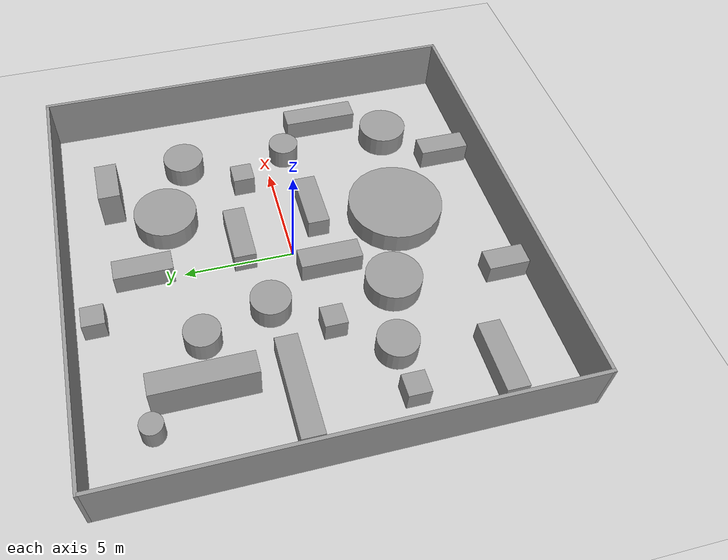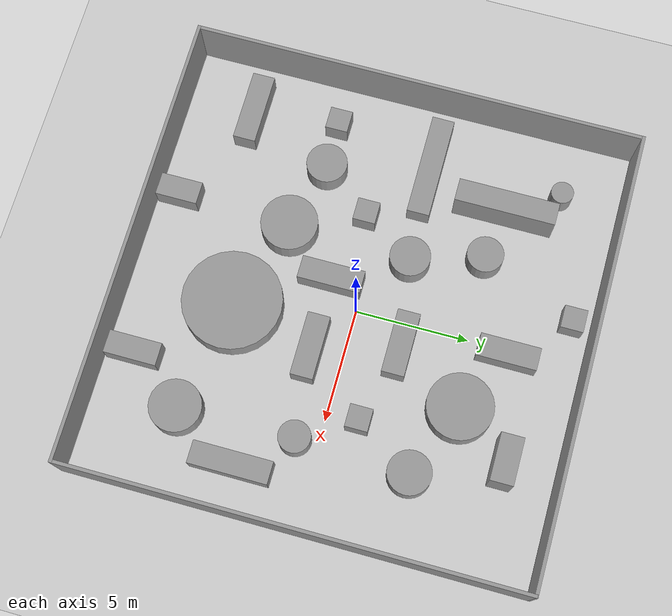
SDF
<sdf version="1.7">
 <world name="default">
  <light name="sun" type="directional">
   <pose>0 0 10 0 -0 0</pose>
   <diffuse>0.8 0.8 0.8 1</diffuse>
   <specular>0.2 0.2 0.2 1</specular>
   <attenuation>
    <range>1000</range>
    <constant>0.9</constant>
    <linear>0.01</linear>
    <quadratic>0.001</quadratic>
   </attenuation>
   <direction>-0.5 0.1 -0.9</direction>
   <spot><inner_angle>0</inner_angle><outer_angle>0</outer_angle><falloff>0</falloff></spot>
  </light>
  <model name="ground_plane">
   <static>1</static>
   <link name="link">
    <collision name="collision">
     <geometry><plane><normal>0 0 1</normal><size>100 100</size></plane></geometry>
     <surface><friction><ode><mu>100</mu><mu2>50</mu2></ode></friction></surface>
    </collision>
    <visual name="visual">
     <cast_shadows>0</cast_shadows>
     <geometry><plane><normal>0 0 1</normal><size>100 100</size></plane></geometry>
     <material>
      <script><uri>file://media/materials/scripts/gazebo.material</uri><name>Gazebo/Grey</name></script>
     </material>
    </visual>
   </link>
  </model>
  <gravity>0 0 -9.8</gravity>
  <magnetic_field>6e-06 2.3e-05 -4.2e-05</magnetic_field>
  <atmosphere type="adiabatic"/>
  <physics type="ode">
   <max_step_size>0.001</max_step_size>
   <real_time_factor>1</real_time_factor>
   <real_time_update_rate>1000</real_time_update_rate>
  </physics>
  <scene><ambient>0.4 0.4 0.4 1</ambient><background>0.7 0.7 0.7 1</background><shadows>1</shadows></scene>
  <spherical_coordinates>
   <surface_model>EARTH_WGS84</surface_model>
   <latitude_deg>0</latitude_deg>
   <longitude_deg>0</longitude_deg>
   <elevation>0</elevation>
   <heading_deg>0</heading_deg>
  </spherical_coordinates>
  <model name="Scenarios_1.1">
   <link name="link_0">
    <inertial>
     <mass>19.1904</mass>
     <inertia><ixx>24.6161</ixx><ixy>0</ixy><ixz>0</ixz><iyy>24.6161</iyy><iyz>0</iyz><izz>46.0337</izz></inertia>
    </inertial>
    <pose>1.71563 -5.34271 0 0 -0 0</pose>
    <visual name="visual">
     <geometry><cylinder><radius>2.19034</radius><length>1</length></cylinder></geometry>
     <material>
      <lighting>1</lighting>
      <script><uri>file://media/materials/scripts/gazebo.material</uri><name>Gazebo/Grey</name></script>
      <shader type="pixel"/>
     </material>
    </visual>
    <collision name="collision">
     <geometry><cylinder><radius>2.19034</radius><length>1</length></cylinder></geometry>
     <surface>
      <friction>
       <ode><mu>1</mu><mu2>1</mu2><fdir1>0 0 0</fdir1><slip1>0</slip1><slip2>0</slip2></ode>
       <torsional>
        <coefficient>1</coefficient>
        <patch_radius>0</patch_radius>
        <surface_radius>0</surface_radius>
        <use_patch_radius>1</use_patch_radius>
        <ode><slip>0</slip></ode>
       </torsional>
      </friction>
      <bounce><restitution_coefficient>0</restitution_coefficient><threshold>1e+06</threshold></bounce>
      <contact>
       <collide_without_contact>0</collide_without_contact>
       <collide_without_contact_bitmask>1</collide_without_contact_bitmask>
       <collide_bitmask>1</collide_bitmask>
       <ode>
        <soft_cfm>0</soft_cfm>
        <soft_erp>0.2</soft_erp>
        <kp>1e+13</kp>
        <kd>1</kd>
        <max_vel>0.01</max_vel>
        <min_depth>0</min_depth>
       </ode>
       <bullet>
        <split_impulse>1</split_impulse>
        <split_impulse_penetration_threshold>-0.01</split_impulse_penetration_threshold>
        <soft_cfm>0</soft_cfm>
        <soft_erp>0.2</soft_erp>
        <kp>1e+13</kp>
        <kd>1</kd>
       </bullet>
      </contact>
     </surface>
    </collision>
   </link>
   <link name="link_1">
    <inertial>
     <mass>5.42729</mass>
     <inertia><ixx>3.6008</ixx><ixy>0</ixy><ixz>0</ixz><iyy>5.06217</iyy><iyz>0</iyz><izz>2.36592</izz></inertia>
    </inertial>
    <pose>5.39319 7.56568 0 0 -0 0</pose>
    <visual name="visual">
     <geometry><box><size>2.05698 1 2.63847</size></box></geometry>
     <material>
      <lighting>1</lighting>
      <script><uri>file://media/materials/scripts/gazebo.material</uri><name>Gazebo/Grey</name></script>
      <shader type="pixel"/>
     </material>
    </visual>
    <collision name="collision">
     <geometry><box><size>2.05698 1 2.63847</size></box></geometry>
     <surface>
      <friction>
       <ode><mu>1</mu><mu2>1</mu2><fdir1>0 0 0</fdir1><slip1>0</slip1><slip2>0</slip2></ode>
       <torsional>
        <coefficient>1</coefficient>
        <patch_radius>0</patch_radius>
        <surface_radius>0</surface_radius>
        <use_patch_radius>1</use_patch_radius>
        <ode><slip>0</slip></ode>
       </torsional>
      </friction>
      <bounce><restitution_coefficient>0</restitution_coefficient><threshold>1e+06</threshold></bounce>
      <contact>
       <collide_without_contact>0</collide_without_contact>
       <collide_without_contact_bitmask>1</collide_without_contact_bitmask>
       <collide_bitmask>1</collide_bitmask>
       <ode>
        <soft_cfm>0</soft_cfm>
        <soft_erp>0.2</soft_erp>
        <kp>1e+13</kp>
        <kd>1</kd>
        <max_vel>0.01</max_vel>
        <min_depth>0</min_depth>
       </ode>
       <bullet>
        <split_impulse>1</split_impulse>
        <split_impulse_penetration_threshold>-0.01</split_impulse_penetration_threshold>
        <soft_cfm>0</soft_cfm>
        <soft_erp>0.2</soft_erp>
        <kp>1e+13</kp>
        <kd>1</kd>
       </bullet>
      </contact>
     </surface>
    </collision>
   </link>
   <link name="link_10">
    <inertial>
     <mass>3.65042</mass>
     <inertia><ixx>1.13705</ixx><ixy>0</ixy><ixz>0</ixz><iyy>1.13705</iyy><iyz>0</iyz><izz>1.6657</izz></inertia>
    </inertial>
    <pose>6.86869 3.86302 0 0 -0 0</pose>
    <visual name="visual">
     <geometry><cylinder><radius>0.955304</radius><length>1</length></cylinder></geometry>
     <material>
      <lighting>1</lighting>
      <script><uri>file://media/materials/scripts/gazebo.material</uri><name>Gazebo/Grey</name></script>
      <shader type="pixel"/>
     </material>
    </visual>
    <collision name="collision">
     <geometry><cylinder><radius>0.955304</radius><length>1</length></cylinder></geometry>
     <surface>
      <friction>
       <ode><mu>1</mu><mu2>1</mu2><fdir1>0 0 0</fdir1><slip1>0</slip1><slip2>0</slip2></ode>
       <torsional>
        <coefficient>1</coefficient>
        <patch_radius>0</patch_radius>
        <surface_radius>0</surface_radius>
        <use_patch_radius>1</use_patch_radius>
        <ode><slip>0</slip></ode>
       </torsional>
      </friction>
      <bounce><restitution_coefficient>0</restitution_coefficient><threshold>1e+06</threshold></bounce>
      <contact>
       <collide_without_contact>0</collide_without_contact>
       <collide_without_contact_bitmask>1</collide_without_contact_bitmask>
       <collide_bitmask>1</collide_bitmask>
       <ode>
        <soft_cfm>0</soft_cfm>
        <soft_erp>0.2</soft_erp>
        <kp>1e+13</kp>
        <kd>1</kd>
        <max_vel>0.01</max_vel>
        <min_depth>0</min_depth>
       </ode>
       <bullet>
        <split_impulse>1</split_impulse>
        <split_impulse_penetration_threshold>-0.01</split_impulse_penetration_threshold>
        <soft_cfm>0</soft_cfm>
        <soft_erp>0.2</soft_erp>
        <kp>1e+13</kp>
        <kd>1</kd>
       </bullet>
      </contact>
     </surface>
    </collision>
   </link>
   <link name="link_11">
    <inertial>
     <mass>2.81928</mass>
     <inertia><ixx>0.46988</ixx><ixy>0</ixy><ixz>0</ixz><iyy>2.10233</iyy><iyz>0</iyz><izz>2.10233</izz></inertia>
    </inertial>
    <pose>2.75847 -1.56518 0 0 -0 0</pose>
    <visual name="visual">
     <geometry><box><size>2.81929 1 1</size></box></geometry>
     <material>
      <lighting>1</lighting>
      <script><uri>file://media/materials/scripts/gazebo.material</uri><name>Gazebo/Grey</name></script>
      <shader type="pixel"/>
     </material>
    </visual>
    <collision name="collision">
     <geometry><box><size>2.81929 1 1</size></box></geometry>
     <surface>
      <friction>
       <ode><mu>1</mu><mu2>1</mu2><fdir1>0 0 0</fdir1><slip1>0</slip1><slip2>0</slip2></ode>
       <torsional>
        <coefficient>1</coefficient>
        <patch_radius>0</patch_radius>
        <surface_radius>0</surface_radius>
        <use_patch_radius>1</use_patch_radius>
        <ode><slip>0</slip></ode>
       </torsional>
      </friction>
      <bounce><restitution_coefficient>0</restitution_coefficient><threshold>1e+06</threshold></bounce>
      <contact>
       <collide_without_contact>0</collide_without_contact>
       <collide_without_contact_bitmask>1</collide_without_contact_bitmask>
       <collide_bitmask>1</collide_bitmask>
       <ode>
        <soft_cfm>0</soft_cfm>
        <soft_erp>0.2</soft_erp>
        <kp>1e+13</kp>
        <kd>1</kd>
        <max_vel>0.01</max_vel>
        <min_depth>0</min_depth>
       </ode>
       <bullet>
        <split_impulse>1</split_impulse>
        <split_impulse_penetration_threshold>-0.01</split_impulse_penetration_threshold>
        <soft_cfm>0</soft_cfm>
        <soft_erp>0.2</soft_erp>
        <kp>1e+13</kp>
        <kd>1</kd>
       </bullet>
      </contact>
     </surface>
    </collision>
   </link>
   <link name="link_12">
    <inertial>
     <mass>1</mass>
     <inertia><ixx>0.145833</ixx><ixy>0</ixy><ixz>0</ixz><iyy>0.145833</iyy><iyz>0</iyz><izz>0.125</izz></inertia>
    </inertial>
    <pose>-6.79938 7.22476 0 0 -0 0</pose>
    <visual name="visual">
     <geometry><cylinder><radius>0.5</radius><length>1</length></cylinder></geometry>
     <material>
      <lighting>1</lighting>
      <script><uri>file://media/materials/scripts/gazebo.material</uri><name>Gazebo/Grey</name></script>
      <shader type="pixel"/>
     </material>
    </visual>
    <collision name="collision">
     <geometry><cylinder><radius>0.5</radius><length>1</length></cylinder></geometry>
     <surface>
      <friction>
       <ode><mu>1</mu><mu2>1</mu2><fdir1>0 0 0</fdir1><slip1>0</slip1><slip2>0</slip2></ode>
       <torsional>
        <coefficient>1</coefficient>
        <patch_radius>0</patch_radius>
        <surface_radius>0</surface_radius>
        <use_patch_radius>1</use_patch_radius>
        <ode><slip>0</slip></ode>
       </torsional>
      </friction>
      <bounce><restitution_coefficient>0</restitution_coefficient><threshold>1e+06</threshold></bounce>
      <contact>
       <collide_without_contact>0</collide_without_contact>
       <collide_without_contact_bitmask>1</collide_without_contact_bitmask>
       <collide_bitmask>1</collide_bitmask>
       <ode>
        <soft_cfm>0</soft_cfm>
        <soft_erp>0.2</soft_erp>
        <kp>1e+13</kp>
        <kd>1</kd>
        <max_vel>0.01</max_vel>
        <min_depth>0</min_depth>
       </ode>
       <bullet>
        <split_impulse>1</split_impulse>
        <split_impulse_penetration_threshold>-0.01</split_impulse_penetration_threshold>
        <soft_cfm>0</soft_cfm>
        <soft_erp>0.2</soft_erp>
        <kp>1e+13</kp>
        <kd>1</kd>
       </bullet>
      </contact>
     </surface>
    </collision>
   </link>
   <link name="link_13">
    <inertial>
     <mass>4.58557</mass>
     <inertia><ixx>0.764262</ixx><ixy>0</ixy><ixz>0</ixz><iyy>8.41736</iyy><iyz>0</iyz><izz>8.41736</izz></inertia>
    </inertial>
    <pose>-6.50098 1.33683 0 0 -0 0</pose>
    <visual name="visual">
     <geometry><box><size>4.58557 1 1</size></box></geometry>
     <material>
      <lighting>1</lighting>
      <script><uri>file://media/materials/scripts/gazebo.material</uri><name>Gazebo/Grey</name></script>
      <shader type="pixel"/>
     </material>
    </visual>
    <collision name="collision">
     <geometry><box><size>4.58557 1 1</size></box></geometry>
     <surface>
      <friction>
       <ode><mu>1</mu><mu2>1</mu2><fdir1>0 0 0</fdir1><slip1>0</slip1><slip2>0</slip2></ode>
       <torsional>
        <coefficient>1</coefficient>
        <patch_radius>0</patch_radius>
        <surface_radius>0</surface_radius>
        <use_patch_radius>1</use_patch_radius>
        <ode><slip>0</slip></ode>
       </torsional>
      </friction>
      <bounce><restitution_coefficient>0</restitution_coefficient><threshold>1e+06</threshold></bounce>
      <contact>
       <collide_without_contact>0</collide_without_contact>
       <collide_without_contact_bitmask>1</collide_without_contact_bitmask>
       <collide_bitmask>1</collide_bitmask>
       <ode>
        <soft_cfm>0</soft_cfm>
        <soft_erp>0.2</soft_erp>
        <kp>1e+13</kp>
        <kd>1</kd>
        <max_vel>0.01</max_vel>
        <min_depth>0</min_depth>
       </ode>
       <bullet>
        <split_impulse>1</split_impulse>
        <split_impulse_penetration_threshold>-0.01</split_impulse_penetration_threshold>
        <soft_cfm>0</soft_cfm>
        <soft_erp>0.2</soft_erp>
        <kp>1e+13</kp>
        <kd>1</kd>
       </bullet>
      </contact>
     </surface>
    </collision>
   </link>
   <link name="link_14">
    <inertial>
     <mass>2.32346</mass>
     <inertia><ixx>1.23889</ixx><ixy>0</ixy><ixz>0</ixz><iyy>0.387244</iyy><iyz>0</iyz><izz>1.23889</izz></inertia>
    </inertial>
    <pose>4.84834 -8.79919 0 0 -0 0</pose>
    <visual name="visual">
     <geometry><box><size>1 2.32347 1</size></box></geometry>
     <material>
      <lighting>1</lighting>
      <script><uri>file://media/materials/scripts/gazebo.material</uri><name>Gazebo/Grey</name></script>
      <shader type="pixel"/>
     </material>
    </visual>
    <collision name="collision">
     <geometry><box><size>1 2.32347 1</size></box></geometry>
     <surface>
      <friction>
       <ode><mu>1</mu><mu2>1</mu2><fdir1>0 0 0</fdir1><slip1>0</slip1><slip2>0</slip2></ode>
       <torsional>
        <coefficient>1</coefficient>
        <patch_radius>0</patch_radius>
        <surface_radius>0</surface_radius>
        <use_patch_radius>1</use_patch_radius>
        <ode><slip>0</slip></ode>
       </torsional>
      </friction>
      <bounce><restitution_coefficient>0</restitution_coefficient><threshold>1e+06</threshold></bounce>
      <contact>
       <collide_without_contact>0</collide_without_contact>
       <collide_without_contact_bitmask>1</collide_without_contact_bitmask>
       <collide_bitmask>1</collide_bitmask>
       <ode>
        <soft_cfm>0</soft_cfm>
        <soft_erp>0.2</soft_erp>
        <kp>1e+13</kp>
        <kd>1</kd>
        <max_vel>0.01</max_vel>
        <min_depth>0</min_depth>
       </ode>
       <bullet>
        <split_impulse>1</split_impulse>
        <split_impulse_penetration_threshold>-0.01</split_impulse_penetration_threshold>
        <soft_cfm>0</soft_cfm>
        <soft_erp>0.2</soft_erp>
        <kp>1e+13</kp>
        <kd>1</kd>
       </bullet>
      </contact>
     </surface>
    </collision>
   </link>
   <link name="link_15">
    <inertial>
     <mass>2.79707</mass>
     <inertia><ixx>2.05669</ixx><ixy>0</ixy><ixz>0</ixz><iyy>0.466179</iyy><iyz>0</iyz><izz>2.05669</izz></inertia>
    </inertial>
    <pose>-0.51354 -1.55911 0 0 -0 0</pose>
    <visual name="visual">
     <geometry><box><size>1 2.79707 1</size></box></geometry>
     <material>
      <lighting>1</lighting>
      <script><uri>file://media/materials/scripts/gazebo.material</uri><name>Gazebo/Grey</name></script>
      <shader type="pixel"/>
     </material>
    </visual>
    <collision name="collision">
     <geometry><box><size>1 2.79707 1</size></box></geometry>
     <surface>
      <friction>
       <ode><mu>1</mu><mu2>1</mu2><fdir1>0 0 0</fdir1><slip1>0</slip1><slip2>0</slip2></ode>
       <torsional>
        <coefficient>1</coefficient>
        <patch_radius>0</patch_radius>
        <surface_radius>0</surface_radius>
        <use_patch_radius>1</use_patch_radius>
        <ode><slip>0</slip></ode>
       </torsional>
      </friction>
      <bounce><restitution_coefficient>0</restitution_coefficient><threshold>1e+06</threshold></bounce>
      <contact>
       <collide_without_contact>0</collide_without_contact>
       <collide_without_contact_bitmask>1</collide_without_contact_bitmask>
       <collide_bitmask>1</collide_bitmask>
       <ode>
        <soft_cfm>0</soft_cfm>
        <soft_erp>0.2</soft_erp>
        <kp>1e+13</kp>
        <kd>1</kd>
        <max_vel>0.01</max_vel>
        <min_depth>0</min_depth>
       </ode>
       <bullet>
        <split_impulse>1</split_impulse>
        <split_impulse_penetration_threshold>-0.01</split_impulse_penetration_threshold>
        <soft_cfm>0</soft_cfm>
        <soft_erp>0.2</soft_erp>
        <kp>1e+13</kp>
        <kd>1</kd>
       </bullet>
      </contact>
     </surface>
    </collision>
   </link>
   <link name="link_16">
    <inertial>
     <mass>3.4805</mass>
     <inertia><ixx>3.80355</ixx><ixy>0</ixy><ixz>0</ixz><iyy>0.580083</iyy><iyz>0</iyz><izz>3.80355</izz></inertia>
    </inertial>
    <pose>8.41021 -3.3978 0 0 -0 0</pose>
    <visual name="visual">
     <geometry><box><size>1 3.48049 1</size></box></geometry>
     <material>
      <lighting>1</lighting>
      <script><uri>file://media/materials/scripts/gazebo.material</uri><name>Gazebo/Grey</name></script>
      <shader type="pixel"/>
     </material>
    </visual>
    <collision name="collision">
     <geometry><box><size>1 3.48049 1</size></box></geometry>
     <surface>
      <friction>
       <ode><mu>1</mu><mu2>1</mu2><fdir1>0 0 0</fdir1><slip1>0</slip1><slip2>0</slip2></ode>
       <torsional>
        <coefficient>1</coefficient>
        <patch_radius>0</patch_radius>
        <surface_radius>0</surface_radius>
        <use_patch_radius>1</use_patch_radius>
        <ode><slip>0</slip></ode>
       </torsional>
      </friction>
      <bounce><restitution_coefficient>0</restitution_coefficient><threshold>1e+06</threshold></bounce>
      <contact>
       <collide_without_contact>0</collide_without_contact>
       <collide_without_contact_bitmask>1</collide_without_contact_bitmask>
       <collide_bitmask>1</collide_bitmask>
       <ode>
        <soft_cfm>0</soft_cfm>
        <soft_erp>0.2</soft_erp>
        <kp>1e+13</kp>
        <kd>1</kd>
        <max_vel>0.01</max_vel>
        <min_depth>0</min_depth>
       </ode>
       <bullet>
        <split_impulse>1</split_impulse>
        <split_impulse_penetration_threshold>-0.01</split_impulse_penetration_threshold>
        <soft_cfm>0</soft_cfm>
        <soft_erp>0.2</soft_erp>
        <kp>1e+13</kp>
        <kd>1</kd>
       </bullet>
      </contact>
     </surface>
    </collision>
   </link>
   <link name="link_17">
    <inertial>
     <mass>1</mass>
     <inertia>
      <ixx>0.166667</ixx>
      <ixy>0</ixy>
      <ixz>0</ixz>
      <iyy>0.166667</iyy>
      <iyz>0</iyz>
      <izz>0.166667</izz>
     </inertia>
    </inertial>
    <pose>5.21333 1.24688 0 0 -0 0</pose>
    <visual name="visual">
     <geometry><box><size>1 1 1</size></box></geometry>
     <material>
      <lighting>1</lighting>
      <script><uri>file://media/materials/scripts/gazebo.material</uri><name>Gazebo/Grey</name></script>
      <shader type="pixel"/>
     </material>
    </visual>
    <collision name="collision">
     <geometry><box><size>1 1 1</size></box></geometry>
     <surface>
      <friction>
       <ode><mu>1</mu><mu2>1</mu2><fdir1>0 0 0</fdir1><slip1>0</slip1><slip2>0</slip2></ode>
       <torsional>
        <coefficient>1</coefficient>
        <patch_radius>0</patch_radius>
        <surface_radius>0</surface_radius>
        <use_patch_radius>1</use_patch_radius>
        <ode><slip>0</slip></ode>
       </torsional>
      </friction>
      <bounce><restitution_coefficient>0</restitution_coefficient><threshold>1e+06</threshold></bounce>
      <contact>
       <collide_without_contact>0</collide_without_contact>
       <collide_without_contact_bitmask>1</collide_without_contact_bitmask>
       <collide_bitmask>1</collide_bitmask>
       <ode>
        <soft_cfm>0</soft_cfm>
        <soft_erp>0.2</soft_erp>
        <kp>1e+13</kp>
        <kd>1</kd>
        <max_vel>0.01</max_vel>
        <min_depth>0</min_depth>
       </ode>
       <bullet>
        <split_impulse>1</split_impulse>
        <split_impulse_penetration_threshold>-0.01</split_impulse_penetration_threshold>
        <soft_cfm>0</soft_cfm>
        <soft_erp>0.2</soft_erp>
        <kp>1e+13</kp>
        <kd>1</kd>
       </bullet>
      </contact>
     </surface>
    </collision>
   </link>
   <link name="link_18">
    <inertial>
     <mass>8.37387</mass>
     <inertia><ixx>5.08041</ixx><ixy>0</ixy><ixz>0</ixz><iyy>5.08041</iyy><iyz>0</iyz><izz>8.76517</izz></inertia>
    </inertial>
    <pose>3.62657 5.21281 0 0 -0 0</pose>
    <visual name="visual">
     <geometry><cylinder><radius>1.44688</radius><length>1</length></cylinder></geometry>
     <material>
      <lighting>1</lighting>
      <script><uri>file://media/materials/scripts/gazebo.material</uri><name>Gazebo/Grey</name></script>
      <shader type="pixel"/>
     </material>
    </visual>
    <collision name="collision">
     <geometry><cylinder><radius>1.44688</radius><length>1</length></cylinder></geometry>
     <surface>
      <friction>
       <ode><mu>1</mu><mu2>1</mu2><fdir1>0 0 0</fdir1><slip1>0</slip1><slip2>0</slip2></ode>
       <torsional>
        <coefficient>1</coefficient>
        <patch_radius>0</patch_radius>
        <surface_radius>0</surface_radius>
        <use_patch_radius>1</use_patch_radius>
        <ode><slip>0</slip></ode>
       </torsional>
      </friction>
      <bounce><restitution_coefficient>0</restitution_coefficient><threshold>1e+06</threshold></bounce>
      <contact>
       <collide_without_contact>0</collide_without_contact>
       <collide_without_contact_bitmask>1</collide_without_contact_bitmask>
       <collide_bitmask>1</collide_bitmask>
       <ode>
        <soft_cfm>0</soft_cfm>
        <soft_erp>0.2</soft_erp>
        <kp>1e+13</kp>
        <kd>1</kd>
        <max_vel>0.01</max_vel>
        <min_depth>0</min_depth>
       </ode>
       <bullet>
        <split_impulse>1</split_impulse>
        <split_impulse_penetration_threshold>-0.01</split_impulse_penetration_threshold>
        <soft_cfm>0</soft_cfm>
        <soft_erp>0.2</soft_erp>
        <kp>1e+13</kp>
        <kd>1</kd>
       </bullet>
      </contact>
     </surface>
    </collision>
   </link>
   <link name="link_19">
    <inertial>
     <mass>1</mass>
     <inertia>
      <ixx>0.166667</ixx>
      <ixy>0</ixy>
      <ixz>0</ixz>
      <iyy>0.166667</iyy>
      <iyz>0</iyz>
      <izz>0.166667</izz>
     </inertia>
    </inertial>
    <pose>-1.33849 8.98036 0 0 -0 0</pose>
    <visual name="visual">
     <geometry><box><size>1 1 1</size></box></geometry>
     <material>
      <lighting>1</lighting>
      <script><uri>file://media/materials/scripts/gazebo.material</uri><name>Gazebo/Grey</name></script>
      <shader type="pixel"/>
     </material>
    </visual>
    <collision name="collision">
     <geometry><box><size>1 1 1</size></box></geometry>
     <surface>
      <friction>
       <ode><mu>1</mu><mu2>1</mu2><fdir1>0 0 0</fdir1><slip1>0</slip1><slip2>0</slip2></ode>
       <torsional>
        <coefficient>1</coefficient>
        <patch_radius>0</patch_radius>
        <surface_radius>0</surface_radius>
        <use_patch_radius>1</use_patch_radius>
        <ode><slip>0</slip></ode>
       </torsional>
      </friction>
      <bounce><restitution_coefficient>0</restitution_coefficient><threshold>1e+06</threshold></bounce>
      <contact>
       <collide_without_contact>0</collide_without_contact>
       <collide_without_contact_bitmask>1</collide_without_contact_bitmask>
       <collide_bitmask>1</collide_bitmask>
       <ode>
        <soft_cfm>0</soft_cfm>
        <soft_erp>0.2</soft_erp>
        <kp>1e+13</kp>
        <kd>1</kd>
        <max_vel>0.01</max_vel>
        <min_depth>0</min_depth>
       </ode>
       <bullet>
        <split_impulse>1</split_impulse>
        <split_impulse_penetration_threshold>-0.01</split_impulse_penetration_threshold>
        <soft_cfm>0</soft_cfm>
        <soft_erp>0.2</soft_erp>
        <kp>1e+13</kp>
        <kd>1</kd>
       </bullet>
      </contact>
     </surface>
    </collision>
   </link>
   <link name="link_2">
    <inertial>
     <mass>2.61849</mass>
     <inertia>
      <ixx>0.646731</ixx>
      <ixy>0</ixy>
      <ixz>0</ixz>
      <iyy>0.646731</iyy>
      <iyz>0</iyz>
      <izz>0.857048</izz>
     </inertia>
    </inertial>
    <pose>-3.144 4.64276 0 0 -0 0</pose>
    <visual name="visual">
     <geometry><cylinder><radius>0.809082</radius><length>1</length></cylinder></geometry>
     <material>
      <lighting>1</lighting>
      <script><uri>file://media/materials/scripts/gazebo.material</uri><name>Gazebo/Grey</name></script>
      <shader type="pixel"/>
     </material>
    </visual>
    <collision name="collision">
     <geometry><cylinder><radius>0.809082</radius><length>1</length></cylinder></geometry>
     <surface>
      <friction>
       <ode><mu>1</mu><mu2>1</mu2><fdir1>0 0 0</fdir1><slip1>0</slip1><slip2>0</slip2></ode>
       <torsional>
        <coefficient>1</coefficient>
        <patch_radius>0</patch_radius>
        <surface_radius>0</surface_radius>
        <use_patch_radius>1</use_patch_radius>
        <ode><slip>0</slip></ode>
       </torsional>
      </friction>
      <bounce><restitution_coefficient>0</restitution_coefficient><threshold>1e+06</threshold></bounce>
      <contact>
       <collide_without_contact>0</collide_without_contact>
       <collide_without_contact_bitmask>1</collide_without_contact_bitmask>
       <collide_bitmask>1</collide_bitmask>
       <ode>
        <soft_cfm>0</soft_cfm>
        <soft_erp>0.2</soft_erp>
        <kp>1e+13</kp>
        <kd>1</kd>
        <max_vel>0.01</max_vel>
        <min_depth>0</min_depth>
       </ode>
       <bullet>
        <split_impulse>1</split_impulse>
        <split_impulse_penetration_threshold>-0.01</split_impulse_penetration_threshold>
        <soft_cfm>0</soft_cfm>
        <soft_erp>0.2</soft_erp>
        <kp>1e+13</kp>
        <kd>1</kd>
       </bullet>
      </contact>
     </surface>
    </collision>
   </link>
   <link name="link_20">
    <inertial>
     <mass>10.4769</mass>
     <inertia><ixx>22.1712</ixx><ixy>0</ixy><ixz>0</ixz><iyy>5.69606</iyy><iyz>0</iyz><izz>18.2213</izz></inertia>
    </inertial>
    <pose>-5.48547 4.96664 0 0 -0 0</pose>
    <visual name="visual">
     <geometry><box><size>1 4.4576 2.35035</size></box></geometry>
     <material>
      <lighting>1</lighting>
      <script><uri>file://media/materials/scripts/gazebo.material</uri><name>Gazebo/Grey</name></script>
      <shader type="pixel"/>
     </material>
    </visual>
    <collision name="collision">
     <geometry><box><size>1 4.4576 2.35035</size></box></geometry>
     <surface>
      <friction>
       <ode><mu>1</mu><mu2>1</mu2><fdir1>0 0 0</fdir1><slip1>0</slip1><slip2>0</slip2></ode>
       <torsional>
        <coefficient>1</coefficient>
        <patch_radius>0</patch_radius>
        <surface_radius>0</surface_radius>
        <use_patch_radius>1</use_patch_radius>
        <ode><slip>0</slip></ode>
       </torsional>
      </friction>
      <bounce><restitution_coefficient>0</restitution_coefficient><threshold>1e+06</threshold></bounce>
      <contact>
       <collide_without_contact>0</collide_without_contact>
       <collide_without_contact_bitmask>1</collide_without_contact_bitmask>
       <collide_bitmask>1</collide_bitmask>
       <ode>
        <soft_cfm>0</soft_cfm>
        <soft_erp>0.2</soft_erp>
        <kp>1e+13</kp>
        <kd>1</kd>
        <max_vel>0.01</max_vel>
        <min_depth>0</min_depth>
       </ode>
       <bullet>
        <split_impulse>1</split_impulse>
        <split_impulse_penetration_threshold>-0.01</split_impulse_penetration_threshold>
        <soft_cfm>0</soft_cfm>
        <soft_erp>0.2</soft_erp>
        <kp>1e+13</kp>
        <kd>1</kd>
       </bullet>
      </contact>
     </surface>
    </collision>
   </link>
   <link name="link_22">
    <inertial>
     <mass>1</mass>
     <inertia>
      <ixx>0.166667</ixx>
      <ixy>0</ixy>
      <ixz>0</ixz>
      <iyy>0.166667</iyy>
      <iyz>0</iyz>
      <izz>0.166667</izz>
     </inertia>
    </inertial>
    <pose>-7.55888 -3.16803 0 0 -0 0</pose>
    <visual name="visual">
     <geometry><box><size>1 1 1</size></box></geometry>
     <material>
      <lighting>1</lighting>
      <script><uri>file://media/materials/scripts/gazebo.material</uri><name>Gazebo/Grey</name></script>
      <shader type="pixel"/>
     </material>
    </visual>
    <collision name="collision">
     <geometry><box><size>1 1 1</size></box></geometry>
     <surface>
      <friction>
       <ode><mu>1</mu><mu2>1</mu2><fdir1>0 0 0</fdir1><slip1>0</slip1><slip2>0</slip2></ode>
       <torsional>
        <coefficient>1</coefficient>
        <patch_radius>0</patch_radius>
        <surface_radius>0</surface_radius>
        <use_patch_radius>1</use_patch_radius>
        <ode><slip>0</slip></ode>
       </torsional>
      </friction>
      <bounce><restitution_coefficient>0</restitution_coefficient><threshold>1e+06</threshold></bounce>
      <contact>
       <collide_without_contact>0</collide_without_contact>
       <collide_without_contact_bitmask>1</collide_without_contact_bitmask>
       <collide_bitmask>1</collide_bitmask>
       <ode>
        <soft_cfm>0</soft_cfm>
        <soft_erp>0.2</soft_erp>
        <kp>1e+13</kp>
        <kd>1</kd>
        <max_vel>0.01</max_vel>
        <min_depth>0</min_depth>
       </ode>
       <bullet>
        <split_impulse>1</split_impulse>
        <split_impulse_penetration_threshold>-0.01</split_impulse_penetration_threshold>
        <soft_cfm>0</soft_cfm>
        <soft_erp>0.2</soft_erp>
        <kp>1e+13</kp>
        <kd>1</kd>
       </bullet>
      </contact>
     </surface>
    </collision>
   </link>
   <link name="link_24">
    <inertial>
     <mass>3.24755</mass>
     <inertia>
      <ixx>0.929791</ixx>
      <ixy>0</ixy>
      <ixz>0</ixz>
      <iyy>0.929791</iyy>
      <iyz>0</iyz>
      <izz>1.31832</izz>
     </inertia>
    </inertial>
    <pose>-2.20292 1.51693 0 0 -0 0</pose>
    <visual name="visual">
     <geometry><cylinder><radius>0.901047</radius><length>1</length></cylinder></geometry>
     <material>
      <lighting>1</lighting>
      <script><uri>file://media/materials/scripts/gazebo.material</uri><name>Gazebo/Grey</name></script>
      <shader type="pixel"/>
     </material>
    </visual>
    <collision name="collision">
     <geometry><cylinder><radius>0.901047</radius><length>1</length></cylinder></geometry>
     <surface>
      <friction>
       <ode><mu>1</mu><mu2>1</mu2><fdir1>0 0 0</fdir1><slip1>0</slip1><slip2>0</slip2></ode>
       <torsional>
        <coefficient>1</coefficient>
        <patch_radius>0</patch_radius>
        <surface_radius>0</surface_radius>
        <use_patch_radius>1</use_patch_radius>
        <ode><slip>0</slip></ode>
       </torsional>
      </friction>
      <bounce><restitution_coefficient>0</restitution_coefficient><threshold>1e+06</threshold></bounce>
      <contact>
       <collide_without_contact>0</collide_without_contact>
       <collide_without_contact_bitmask>1</collide_without_contact_bitmask>
       <collide_bitmask>1</collide_bitmask>
       <ode>
        <soft_cfm>0</soft_cfm>
        <soft_erp>0.2</soft_erp>
        <kp>1e+13</kp>
        <kd>1</kd>
        <max_vel>0.01</max_vel>
        <min_depth>0</min_depth>
       </ode>
       <bullet>
        <split_impulse>1</split_impulse>
        <split_impulse_penetration_threshold>-0.01</split_impulse_penetration_threshold>
        <soft_cfm>0</soft_cfm>
        <soft_erp>0.2</soft_erp>
        <kp>1e+13</kp>
        <kd>1</kd>
       </bullet>
      </contact>
     </surface>
    </collision>
   </link>
   <link name="link_25">
    <inertial>
     <mass>3.30771</mass>
     <inertia>
      <ixx>0.959459</ixx>
      <ixy>0</ixy>
      <ixz>0</ixz>
      <iyy>0.959459</iyy>
      <iyz>0</iyz>
      <izz>1.36763</izz>
     </inertia>
    </inertial>
    <pose>-5.41523 -3.12894 0 0 -0 0</pose>
    <visual name="visual">
     <geometry><cylinder><radius>0.909361</radius><length>1</length></cylinder></geometry>
     <material>
      <lighting>1</lighting>
      <script><uri>file://media/materials/scripts/gazebo.material</uri><name>Gazebo/Grey</name></script>
      <shader type="pixel"/>
     </material>
    </visual>
    <collision name="collision">
     <geometry><cylinder><radius>0.909361</radius><length>1</length></cylinder></geometry>
     <surface>
      <friction>
       <ode><mu>1</mu><mu2>1</mu2><fdir1>0 0 0</fdir1><slip1>0</slip1><slip2>0</slip2></ode>
       <torsional>
        <coefficient>1</coefficient>
        <patch_radius>0</patch_radius>
        <surface_radius>0</surface_radius>
        <use_patch_radius>1</use_patch_radius>
        <ode><slip>0</slip></ode>
       </torsional>
      </friction>
      <bounce><restitution_coefficient>0</restitution_coefficient><threshold>1e+06</threshold></bounce>
      <contact>
       <collide_without_contact>0</collide_without_contact>
       <collide_without_contact_bitmask>1</collide_without_contact_bitmask>
       <collide_bitmask>1</collide_bitmask>
       <ode>
        <soft_cfm>0</soft_cfm>
        <soft_erp>0.2</soft_erp>
        <kp>1e+13</kp>
        <kd>1</kd>
        <max_vel>0.01</max_vel>
        <min_depth>0</min_depth>
       </ode>
       <bullet>
        <split_impulse>1</split_impulse>
        <split_impulse_penetration_threshold>-0.01</split_impulse_penetration_threshold>
        <soft_cfm>0</soft_cfm>
        <soft_erp>0.2</soft_erp>
        <kp>1e+13</kp>
        <kd>1</kd>
       </bullet>
      </contact>
     </surface>
    </collision>
   </link>
   <link name="link_26">
    <inertial>
     <mass>1.86097</mass>
     <inertia>
      <ixx>0.692163</ixx>
      <ixy>0</ixy>
      <ixz>0</ixz>
      <iyy>0.310162</iyy>
      <iyz>0</iyz>
      <izz>0.692163</izz>
     </inertia>
    </inertial>
    <pose>-2.54926 -9.07682 0 0 -0 0</pose>
    <visual name="visual">
     <geometry><box><size>1 1.86098 1</size></box></geometry>
     <material>
      <lighting>1</lighting>
      <script><uri>file://media/materials/scripts/gazebo.material</uri><name>Gazebo/Grey</name></script>
      <shader type="pixel"/>
     </material>
    </visual>
    <collision name="collision">
     <geometry><box><size>1 1.86098 1</size></box></geometry>
     <surface>
      <friction>
       <ode><mu>1</mu><mu2>1</mu2><fdir1>0 0 0</fdir1><slip1>0</slip1><slip2>0</slip2></ode>
       <torsional>
        <coefficient>1</coefficient>
        <patch_radius>0</patch_radius>
        <surface_radius>0</surface_radius>
        <use_patch_radius>1</use_patch_radius>
        <ode><slip>0</slip></ode>
       </torsional>
      </friction>
      <bounce><restitution_coefficient>0</restitution_coefficient><threshold>1e+06</threshold></bounce>
      <contact>
       <collide_without_contact>0</collide_without_contact>
       <collide_without_contact_bitmask>1</collide_without_contact_bitmask>
       <collide_bitmask>1</collide_bitmask>
       <ode>
        <soft_cfm>0</soft_cfm>
        <soft_erp>0.2</soft_erp>
        <kp>1e+13</kp>
        <kd>1</kd>
        <max_vel>0.01</max_vel>
        <min_depth>0</min_depth>
       </ode>
       <bullet>
        <split_impulse>1</split_impulse>
        <split_impulse_penetration_threshold>-0.01</split_impulse_penetration_threshold>
        <soft_cfm>0</soft_cfm>
        <soft_erp>0.2</soft_erp>
        <kp>1e+13</kp>
        <kd>1</kd>
       </bullet>
      </contact>
     </surface>
    </collision>
   </link>
   <link name="link_3">
    <inertial>
     <mass>2.82336</mass>
     <inertia><ixx>0.470561</ixx><ixy>0</ixy><ixz>0</ixz><iyy>2.1108</iyy><iyz>0</iyz><izz>2.1108</izz></inertia>
    </inertial>
    <pose>1.62467 2.1181 0 0 -0 0</pose>
    <visual name="visual">
     <geometry><box><size>2.82337 1 1</size></box></geometry>
     <material>
      <lighting>1</lighting>
      <script><uri>file://media/materials/scripts/gazebo.material</uri><name>Gazebo/Grey</name></script>
      <shader type="pixel"/>
     </material>
    </visual>
    <collision name="collision">
     <geometry><box><size>2.82337 1 1</size></box></geometry>
     <surface>
      <friction>
       <ode><mu>1</mu><mu2>1</mu2><fdir1>0 0 0</fdir1><slip1>0</slip1><slip2>0</slip2></ode>
       <torsional>
        <coefficient>1</coefficient>
        <patch_radius>0</patch_radius>
        <surface_radius>0</surface_radius>
        <use_patch_radius>1</use_patch_radius>
        <ode><slip>0</slip></ode>
       </torsional>
      </friction>
      <bounce><restitution_coefficient>0</restitution_coefficient><threshold>1e+06</threshold></bounce>
      <contact>
       <collide_without_contact>0</collide_without_contact>
       <collide_without_contact_bitmask>1</collide_without_contact_bitmask>
       <collide_bitmask>1</collide_bitmask>
       <ode>
        <soft_cfm>0</soft_cfm>
        <soft_erp>0.2</soft_erp>
        <kp>1e+13</kp>
        <kd>1</kd>
        <max_vel>0.01</max_vel>
        <min_depth>0</min_depth>
       </ode>
       <bullet>
        <split_impulse>1</split_impulse>
        <split_impulse_penetration_threshold>-0.01</split_impulse_penetration_threshold>
        <soft_cfm>0</soft_cfm>
        <soft_erp>0.2</soft_erp>
        <kp>1e+13</kp>
        <kd>1</kd>
       </bullet>
      </contact>
     </surface>
    </collision>
   </link>
   <link name="link_4">
    <inertial>
     <mass>1.99222</mass>
     <inertia>
      <ixx>0.414077</ixx>
      <ixy>0</ixy>
      <ixz>0</ixz>
      <iyy>0.414077</iyy>
      <iyz>0</iyz>
      <izz>0.496118</izz>
     </inertia>
    </inertial>
    <pose>6.67956 -1.132 0 0 -0 0</pose>
    <visual name="visual">
     <geometry><cylinder><radius>0.70573</radius><length>1</length></cylinder></geometry>
     <material>
      <lighting>1</lighting>
      <script><uri>file://media/materials/scripts/gazebo.material</uri><name>Gazebo/Grey</name></script>
      <shader type="pixel"/>
     </material>
    </visual>
    <collision name="collision">
     <geometry><cylinder><radius>0.70573</radius><length>1</length></cylinder></geometry>
     <surface>
      <friction>
       <ode><mu>1</mu><mu2>1</mu2><fdir1>0 0 0</fdir1><slip1>0</slip1><slip2>0</slip2></ode>
       <torsional>
        <coefficient>1</coefficient>
        <patch_radius>0</patch_radius>
        <surface_radius>0</surface_radius>
        <use_patch_radius>1</use_patch_radius>
        <ode><slip>0</slip></ode>
       </torsional>
      </friction>
      <bounce><restitution_coefficient>0</restitution_coefficient><threshold>1e+06</threshold></bounce>
      <contact>
       <collide_without_contact>0</collide_without_contact>
       <collide_without_contact_bitmask>1</collide_without_contact_bitmask>
       <collide_bitmask>1</collide_bitmask>
       <ode>
        <soft_cfm>0</soft_cfm>
        <soft_erp>0.2</soft_erp>
        <kp>1e+13</kp>
        <kd>1</kd>
        <max_vel>0.01</max_vel>
        <min_depth>0</min_depth>
       </ode>
       <bullet>
        <split_impulse>1</split_impulse>
        <split_impulse_penetration_threshold>-0.01</split_impulse_penetration_threshold>
        <soft_cfm>0</soft_cfm>
        <soft_erp>0.2</soft_erp>
        <kp>1e+13</kp>
        <kd>1</kd>
       </bullet>
      </contact>
     </surface>
    </collision>
   </link>
   <link name="link_5">
    <inertial>
     <mass>1</mass>
     <inertia>
      <ixx>0.166667</ixx>
      <ixy>0</ixy>
      <ixz>0</ixz>
      <iyy>0.166667</iyy>
      <iyz>0</iyz>
      <izz>0.166667</izz>
     </inertia>
    </inertial>
    <pose>-3.71138 -0.849884 0 0 -0 0</pose>
    <visual name="visual">
     <geometry><box><size>1 1 1</size></box></geometry>
     <material>
      <lighting>1</lighting>
      <script><uri>file://media/materials/scripts/gazebo.material</uri><name>Gazebo/Grey</name></script>
      <shader type="pixel"/>
     </material>
    </visual>
    <collision name="collision">
     <geometry><box><size>1 1 1</size></box></geometry>
     <surface>
      <friction>
       <ode><mu>1</mu><mu2>1</mu2><fdir1>0 0 0</fdir1><slip1>0</slip1><slip2>0</slip2></ode>
       <torsional>
        <coefficient>1</coefficient>
        <patch_radius>0</patch_radius>
        <surface_radius>0</surface_radius>
        <use_patch_radius>1</use_patch_radius>
        <ode><slip>0</slip></ode>
       </torsional>
      </friction>
      <bounce><restitution_coefficient>0</restitution_coefficient><threshold>1e+06</threshold></bounce>
      <contact>
       <collide_without_contact>0</collide_without_contact>
       <collide_without_contact_bitmask>1</collide_without_contact_bitmask>
       <collide_bitmask>1</collide_bitmask>
       <ode>
        <soft_cfm>0</soft_cfm>
        <soft_erp>0.2</soft_erp>
        <kp>1e+13</kp>
        <kd>1</kd>
        <max_vel>0.01</max_vel>
        <min_depth>0</min_depth>
       </ode>
       <bullet>
        <split_impulse>1</split_impulse>
        <split_impulse_penetration_threshold>-0.01</split_impulse_penetration_threshold>
        <soft_cfm>0</soft_cfm>
        <soft_erp>0.2</soft_erp>
        <kp>1e+13</kp>
        <kd>1</kd>
       </bullet>
      </contact>
     </surface>
    </collision>
   </link>
   <link name="link_6">
    <inertial>
     <mass>6.37111</mass>
     <inertia><ixx>3.06786</ixx><ixy>0</ixy><ixz>0</ixz><iyy>3.06786</iyy><iyz>0</iyz><izz>5.07387</izz></inertia>
    </inertial>
    <pose>-2.3141 -3.96151 0 0 -0 0</pose>
    <visual name="visual">
     <geometry><cylinder><radius>1.26205</radius><length>1</length></cylinder></geometry>
     <material>
      <lighting>1</lighting>
      <script><uri>file://media/materials/scripts/gazebo.material</uri><name>Gazebo/Grey</name></script>
      <shader type="pixel"/>
     </material>
    </visual>
    <collision name="collision">
     <geometry><cylinder><radius>1.26205</radius><length>1</length></cylinder></geometry>
     <surface>
      <friction>
       <ode><mu>1</mu><mu2>1</mu2><fdir1>0 0 0</fdir1><slip1>0</slip1><slip2>0</slip2></ode>
       <torsional>
        <coefficient>1</coefficient>
        <patch_radius>0</patch_radius>
        <surface_radius>0</surface_radius>
        <use_patch_radius>1</use_patch_radius>
        <ode><slip>0</slip></ode>
       </torsional>
      </friction>
      <bounce><restitution_coefficient>0</restitution_coefficient><threshold>1e+06</threshold></bounce>
      <contact>
       <collide_without_contact>0</collide_without_contact>
       <collide_without_contact_bitmask>1</collide_without_contact_bitmask>
       <collide_bitmask>1</collide_bitmask>
       <ode>
        <soft_cfm>0</soft_cfm>
        <soft_erp>0.2</soft_erp>
        <kp>1e+13</kp>
        <kd>1</kd>
        <max_vel>0.01</max_vel>
        <min_depth>0</min_depth>
       </ode>
       <bullet>
        <split_impulse>1</split_impulse>
        <split_impulse_penetration_threshold>-0.01</split_impulse_penetration_threshold>
        <soft_cfm>0</soft_cfm>
        <soft_erp>0.2</soft_erp>
        <kp>1e+13</kp>
        <kd>1</kd>
       </bullet>
      </contact>
     </surface>
    </collision>
   </link>
   <link name="link_7">
    <inertial>
     <mass>3.17355</mass>
     <inertia><ixx>0.528924</ixx><ixy>0</ixy><ixz>0</ixz><iyy>2.92795</iyy><iyz>0</iyz><izz>2.92795</izz></inertia>
    </inertial>
    <pose>-7.14634 -7.00936 0 0 -0 0</pose>
    <visual name="visual">
     <geometry><box><size>3.17354 1 1</size></box></geometry>
     <material>
      <lighting>1</lighting>
      <script><uri>file://media/materials/scripts/gazebo.material</uri><name>Gazebo/Grey</name></script>
      <shader type="pixel"/>
     </material>
    </visual>
    <collision name="collision">
     <geometry><box><size>3.17354 1 1</size></box></geometry>
     <surface>
      <friction>
       <ode><mu>1</mu><mu2>1</mu2><fdir1>0 0 0</fdir1><slip1>0</slip1><slip2>0</slip2></ode>
       <torsional>
        <coefficient>1</coefficient>
        <patch_radius>0</patch_radius>
        <surface_radius>0</surface_radius>
        <use_patch_radius>1</use_patch_radius>
        <ode><slip>0</slip></ode>
       </torsional>
      </friction>
      <bounce><restitution_coefficient>0</restitution_coefficient><threshold>1e+06</threshold></bounce>
      <contact>
       <collide_without_contact>0</collide_without_contact>
       <collide_without_contact_bitmask>1</collide_without_contact_bitmask>
       <collide_bitmask>1</collide_bitmask>
       <ode>
        <soft_cfm>0</soft_cfm>
        <soft_erp>0.2</soft_erp>
        <kp>1e+13</kp>
        <kd>1</kd>
        <max_vel>0.01</max_vel>
        <min_depth>0</min_depth>
       </ode>
       <bullet>
        <split_impulse>1</split_impulse>
        <split_impulse_penetration_threshold>-0.01</split_impulse_penetration_threshold>
        <soft_cfm>0</soft_cfm>
        <soft_erp>0.2</soft_erp>
        <kp>1e+13</kp>
        <kd>1</kd>
       </bullet>
      </contact>
     </surface>
    </collision>
   </link>
   <link name="link_8">
    <inertial>
     <mass>5.1816</mass>
     <inertia><ixx>2.10985</ixx><ixy>0</ixy><ixz>0</ixz><iyy>2.10985</iyy><iyz>0</iyz><izz>3.3561</izz></inertia>
    </inertial>
    <pose>6.74263 -6.30518 0 0 -0 0</pose>
    <visual name="visual">
     <geometry><cylinder><radius>1.13815</radius><length>1</length></cylinder></geometry>
     <material>
      <lighting>1</lighting>
      <script><uri>file://media/materials/scripts/gazebo.material</uri><name>Gazebo/Grey</name></script>
      <shader type="pixel"/>
     </material>
    </visual>
    <collision name="collision">
     <geometry><cylinder><radius>1.13815</radius><length>1</length></cylinder></geometry>
     <surface>
      <friction>
       <ode><mu>1</mu><mu2>1</mu2><fdir1>0 0 0</fdir1><slip1>0</slip1><slip2>0</slip2></ode>
       <torsional>
        <coefficient>1</coefficient>
        <patch_radius>0</patch_radius>
        <surface_radius>0</surface_radius>
        <use_patch_radius>1</use_patch_radius>
        <ode><slip>0</slip></ode>
       </torsional>
      </friction>
      <bounce><restitution_coefficient>0</restitution_coefficient><threshold>1e+06</threshold></bounce>
      <contact>
       <collide_without_contact>0</collide_without_contact>
       <collide_without_contact_bitmask>1</collide_without_contact_bitmask>
       <collide_bitmask>1</collide_bitmask>
       <ode>
        <soft_cfm>0</soft_cfm>
        <soft_erp>0.2</soft_erp>
        <kp>1e+13</kp>
        <kd>1</kd>
        <max_vel>0.01</max_vel>
        <min_depth>0</min_depth>
       </ode>
       <bullet>
        <split_impulse>1</split_impulse>
        <split_impulse_penetration_threshold>-0.01</split_impulse_penetration_threshold>
        <soft_cfm>0</soft_cfm>
        <soft_erp>0.2</soft_erp>
        <kp>1e+13</kp>
        <kd>1</kd>
       </bullet>
      </contact>
     </surface>
    </collision>
   </link>
   <link name="link_9">
    <inertial>
     <mass>2.63549</mass>
     <inertia><ixx>1.74509</ixx><ixy>0</ixy><ixz>0</ixz><iyy>0.439249</iyy><iyz>0</iyz><izz>1.74509</izz></inertia>
    </inertial>
    <pose>0.798681 6.62093 0 0 -0 0</pose>
    <visual name="visual">
     <geometry><box><size>1 2.63549 1</size></box></geometry>
     <material>
      <lighting>1</lighting>
      <script><uri>file://media/materials/scripts/gazebo.material</uri><name>Gazebo/Grey</name></script>
      <shader type="pixel"/>
     </material>
    </visual>
    <collision name="collision">
     <geometry><box><size>1 2.63549 1</size></box></geometry>
     <surface>
      <friction>
       <ode><mu>1</mu><mu2>1</mu2><fdir1>0 0 0</fdir1><slip1>0</slip1><slip2>0</slip2></ode>
       <torsional>
        <coefficient>1</coefficient>
        <patch_radius>0</patch_radius>
        <surface_radius>0</surface_radius>
        <use_patch_radius>1</use_patch_radius>
        <ode><slip>0</slip></ode>
       </torsional>
      </friction>
      <bounce><restitution_coefficient>0</restitution_coefficient><threshold>1e+06</threshold></bounce>
      <contact>
       <collide_without_contact>0</collide_without_contact>
       <collide_without_contact_bitmask>1</collide_without_contact_bitmask>
       <collide_bitmask>1</collide_bitmask>
       <ode>
        <soft_cfm>0</soft_cfm>
        <soft_erp>0.2</soft_erp>
        <kp>1e+13</kp>
        <kd>1</kd>
        <max_vel>0.01</max_vel>
        <min_depth>0</min_depth>
       </ode>
       <bullet>
        <split_impulse>1</split_impulse>
        <split_impulse_penetration_threshold>-0.01</split_impulse_penetration_threshold>
        <soft_cfm>0</soft_cfm>
        <soft_erp>0.2</soft_erp>
        <kp>1e+13</kp>
        <kd>1</kd>
       </bullet>
      </contact>
     </surface>
    </collision>
   </link>
   <static>0</static>
   <pose>-0.55286 0.1502 0.5 0 -0 0</pose>
  </model>
  <model name="Wall_10_10_grey">
   <link name="Wall_10">
    <pose>0 -10.0502 0 0 -0 3.14159</pose>
    <inertial>
     <mass>1</mass>
     <inertia><ixx>1</ixx><ixy>0</ixy><ixz>0</ixz><iyy>1</iyy><iyz>0</iyz><izz>1</izz></inertia>
    </inertial>
    <visual name="Wall_10_Visual">
     <pose>0 0 1.25 0 -0 0</pose>
     <geometry><box><size>20.15 0.15 2.5</size></box></geometry>
     <material>
      <script><uri>file://media/materials/scripts/gazebo.material</uri><name>Gazebo/Grey</name></script>
      <ambient>0.333 0.341 0.325 1</ambient>
      <shader type="pixel"><normal_map>__default__</normal_map></shader>
      <diffuse>0.7 0.7 0.7 1</diffuse>
      <specular>0.01 0.01 0.01 1</specular>
      <emissive>0 0 0 1</emissive>
     </material>
     <meta><layer>0</layer></meta>
    </visual>
    <collision name="Wall_10_Collision">
     <pose>0 0 1.25 0 -0 0</pose>
     <geometry><box><size>20.15 0.15 2.5</size></box></geometry>
     <surface>
      <friction>
       <ode><mu>1</mu><mu2>1</mu2><fdir1>0 0 0</fdir1><slip1>0</slip1><slip2>0</slip2></ode>
       <torsional>
        <coefficient>1</coefficient>
        <patch_radius>0</patch_radius>
        <surface_radius>0</surface_radius>
        <use_patch_radius>1</use_patch_radius>
        <ode><slip>0</slip></ode>
       </torsional>
      </friction>
      <bounce><restitution_coefficient>0</restitution_coefficient><threshold>1e+06</threshold></bounce>
      <contact>
       <collide_without_contact>0</collide_without_contact>
       <collide_without_contact_bitmask>1</collide_without_contact_bitmask>
       <collide_bitmask>1</collide_bitmask>
       <ode>
        <soft_cfm>0</soft_cfm>
        <soft_erp>0.2</soft_erp>
        <kp>1e+13</kp>
        <kd>1</kd>
        <max_vel>0.01</max_vel>
        <min_depth>0</min_depth>
       </ode>
       <bullet>
        <split_impulse>1</split_impulse>
        <split_impulse_penetration_threshold>-0.01</split_impulse_penetration_threshold>
        <soft_cfm>0</soft_cfm>
        <soft_erp>0.2</soft_erp>
        <kp>1e+13</kp>
        <kd>1</kd>
       </bullet>
      </contact>
     </surface>
    </collision>
   </link>
   <link name="Wall_12">
    <pose>10 -0.050187 0 0 -0 1.5708</pose>
    <inertial>
     <mass>1</mass>
     <inertia><ixx>1</ixx><ixy>0</ixy><ixz>0</ixz><iyy>1</iyy><iyz>0</iyz><izz>1</izz></inertia>
    </inertial>
    <visual name="Wall_12_Visual">
     <pose>0 0 1.25 0 -0 0</pose>
     <geometry><box><size>20.15 0.15 2.5</size></box></geometry>
     <material>
      <script><uri>file://media/materials/scripts/gazebo.material</uri><name>Gazebo/Grey</name></script>
      <ambient>0.333 0.341 0.325 1</ambient>
      <shader type="pixel"><normal_map>__default__</normal_map></shader>
      <diffuse>0.7 0.7 0.7 1</diffuse>
      <specular>0.01 0.01 0.01 1</specular>
      <emissive>0 0 0 1</emissive>
     </material>
     <meta><layer>0</layer></meta>
    </visual>
    <collision name="Wall_12_Collision">
     <pose>0 0 1.25 0 -0 0</pose>
     <geometry><box><size>20.15 0.15 2.5</size></box></geometry>
     <surface>
      <friction>
       <ode><mu>1</mu><mu2>1</mu2><fdir1>0 0 0</fdir1><slip1>0</slip1><slip2>0</slip2></ode>
       <torsional>
        <coefficient>1</coefficient>
        <patch_radius>0</patch_radius>
        <surface_radius>0</surface_radius>
        <use_patch_radius>1</use_patch_radius>
        <ode><slip>0</slip></ode>
       </torsional>
      </friction>
      <bounce><restitution_coefficient>0</restitution_coefficient><threshold>1e+06</threshold></bounce>
      <contact>
       <collide_without_contact>0</collide_without_contact>
       <collide_without_contact_bitmask>1</collide_without_contact_bitmask>
       <collide_bitmask>1</collide_bitmask>
       <ode>
        <soft_cfm>0</soft_cfm>
        <soft_erp>0.2</soft_erp>
        <kp>1e+13</kp>
        <kd>1</kd>
        <max_vel>0.01</max_vel>
        <min_depth>0</min_depth>
       </ode>
       <bullet>
        <split_impulse>1</split_impulse>
        <split_impulse_penetration_threshold>-0.01</split_impulse_penetration_threshold>
        <soft_cfm>0</soft_cfm>
        <soft_erp>0.2</soft_erp>
        <kp>1e+13</kp>
        <kd>1</kd>
       </bullet>
      </contact>
     </surface>
    </collision>
   </link>
   <link name="Wall_13">
    <pose>0 9.99981 0 0 -0 3.13659</pose>
    <inertial>
     <mass>1</mass>
     <inertia><ixx>1</ixx><ixy>0</ixy><ixz>0</ixz><iyy>1</iyy><iyz>0</iyz><izz>1</izz></inertia>
    </inertial>
    <visual name="Wall_13_Visual">
     <pose>0 0 1.25 0 -0 0</pose>
     <geometry><box><size>20.1502 0.15 2.5</size></box></geometry>
     <material>
      <script><uri>file://media/materials/scripts/gazebo.material</uri><name>Gazebo/Grey</name></script>
      <ambient>0.333 0.341 0.325 1</ambient>
      <shader type="pixel"><normal_map>__default__</normal_map></shader>
      <diffuse>0.7 0.7 0.7 1</diffuse>
      <specular>0.01 0.01 0.01 1</specular>
      <emissive>0 0 0 1</emissive>
     </material>
     <meta><layer>0</layer></meta>
    </visual>
    <collision name="Wall_13_Collision">
     <pose>0 0 1.25 0 -0 0</pose>
     <geometry><box><size>20.1502 0.15 2.5</size></box></geometry>
     <surface>
      <friction>
       <ode><mu>1</mu><mu2>1</mu2><fdir1>0 0 0</fdir1><slip1>0</slip1><slip2>0</slip2></ode>
       <torsional>
        <coefficient>1</coefficient>
        <patch_radius>0</patch_radius>
        <surface_radius>0</surface_radius>
        <use_patch_radius>1</use_patch_radius>
        <ode><slip>0</slip></ode>
       </torsional>
      </friction>
      <bounce><restitution_coefficient>0</restitution_coefficient><threshold>1e+06</threshold></bounce>
      <contact>
       <collide_without_contact>0</collide_without_contact>
       <collide_without_contact_bitmask>1</collide_without_contact_bitmask>
       <collide_bitmask>1</collide_bitmask>
       <ode>
        <soft_cfm>0</soft_cfm>
        <soft_erp>0.2</soft_erp>
        <kp>1e+13</kp>
        <kd>1</kd>
        <max_vel>0.01</max_vel>
        <min_depth>0</min_depth>
       </ode>
       <bullet>
        <split_impulse>1</split_impulse>
        <split_impulse_penetration_threshold>-0.01</split_impulse_penetration_threshold>
        <soft_cfm>0</soft_cfm>
        <soft_erp>0.2</soft_erp>
        <kp>1e+13</kp>
        <kd>1</kd>
       </bullet>
      </contact>
     </surface>
    </collision>
   </link>
   <link name="Wall_7">
    <pose>-10 -0.050187 0 0 -0 1.5708</pose>
    <inertial>
     <mass>1</mass>
     <inertia><ixx>1</ixx><ixy>0</ixy><ixz>0</ixz><iyy>1</iyy><iyz>0</iyz><izz>1</izz></inertia>
    </inertial>
    <visual name="Wall_7_Visual">
     <pose>0 0 1.25 0 -0 0</pose>
     <geometry><box><size>20.15 0.15 2.5</size></box></geometry>
     <material>
      <script><uri>file://media/materials/scripts/gazebo.material</uri><name>Gazebo/Grey</name></script>
      <ambient>0.333 0.341 0.325 1</ambient>
      <shader type="pixel"><normal_map>__default__</normal_map></shader>
      <diffuse>0.7 0.7 0.7 1</diffuse>
      <specular>0.01 0.01 0.01 1</specular>
      <emissive>0 0 0 1</emissive>
     </material>
     <meta><layer>0</layer></meta>
    </visual>
    <collision name="Wall_7_Collision">
     <pose>0 0 1.25 0 -0 0</pose>
     <geometry><box><size>20.15 0.15 2.5</size></box></geometry>
     <surface>
      <friction>
       <ode><mu>1</mu><mu2>1</mu2><fdir1>0 0 0</fdir1><slip1>0</slip1><slip2>0</slip2></ode>
       <torsional>
        <coefficient>1</coefficient>
        <patch_radius>0</patch_radius>
        <surface_radius>0</surface_radius>
        <use_patch_radius>1</use_patch_radius>
        <ode><slip>0</slip></ode>
       </torsional>
      </friction>
      <bounce><restitution_coefficient>0</restitution_coefficient><threshold>1e+06</threshold></bounce>
      <contact>
       <collide_without_contact>0</collide_without_contact>
       <collide_without_contact_bitmask>1</collide_without_contact_bitmask>
       <collide_bitmask>1</collide_bitmask>
       <ode>
        <soft_cfm>0</soft_cfm>
        <soft_erp>0.2</soft_erp>
        <kp>1e+13</kp>
        <kd>1</kd>
        <max_vel>0.01</max_vel>
        <min_depth>0</min_depth>
       </ode>
       <bullet>
        <split_impulse>1</split_impulse>
        <split_impulse_penetration_threshold>-0.01</split_impulse_penetration_threshold>
        <soft_cfm>0</soft_cfm>
        <soft_erp>0.2</soft_erp>
        <kp>1e+13</kp>
        <kd>1</kd>
       </bullet>
      </contact>
     </surface>
    </collision>
   </link>
   <static>1</static>
   <pose>-0.114498 0.05374 0 0 -0 0</pose>
  </model>
 </world>
</sdf>
